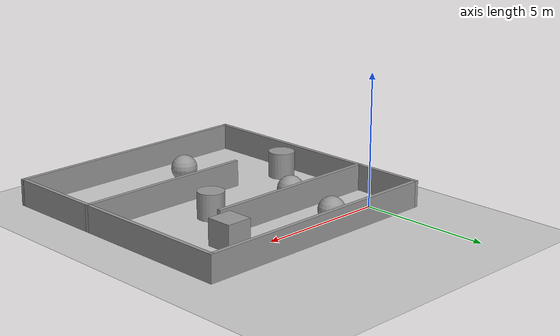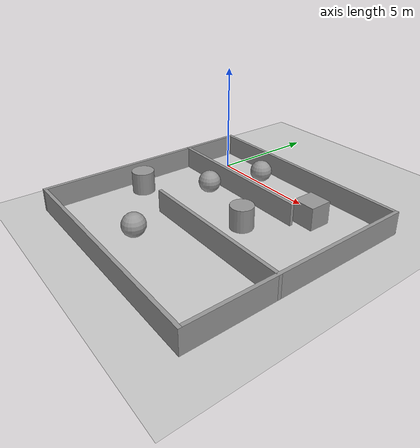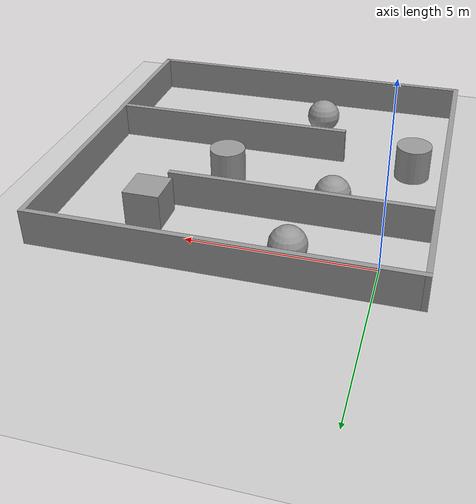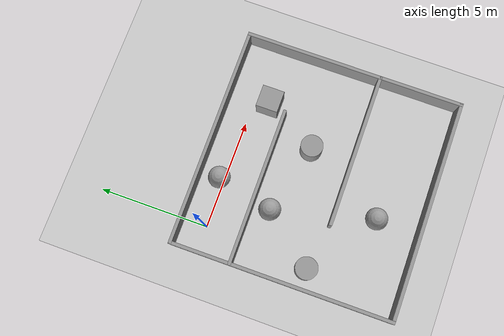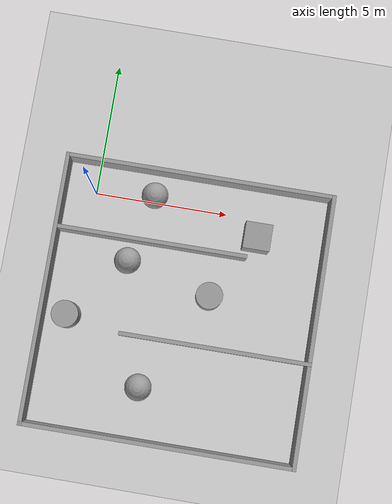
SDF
<sdf version="1.7">
 <world name="default">
  <light name="sun" type="directional">
   <pose>0 0 10 0 -0 0</pose>
   <diffuse>0.8 0.8 0.8 1</diffuse>
   <specular>0.2 0.2 0.2 1</specular>
   <attenuation>
    <range>1000</range>
    <constant>0.9</constant>
    <linear>0.01</linear>
    <quadratic>0.001</quadratic>
   </attenuation>
   <direction>-0.5 0.1 -0.9</direction>
   <spot><inner_angle>0</inner_angle><outer_angle>0</outer_angle><falloff>0</falloff></spot>
  </light>
  <model name="ground_plane">
   <static>1</static>
   <link name="link">
    <collision name="collision">
     <geometry><plane><normal>0 0 1</normal><size>100 100</size></plane></geometry>
     <surface>
      <contact><collide_bitmask>65535</collide_bitmask></contact>
      <friction><ode><mu>100</mu><mu2>50</mu2></ode></friction>
     </surface>
    </collision>
    <visual name="visual">
     <cast_shadows>0</cast_shadows>
     <geometry><plane><normal>0 0 1</normal><size>100 100</size></plane></geometry>
     <material>
      <script><uri>file://media/materials/scripts/gazebo.material</uri><name>Gazebo/Grey</name></script>
     </material>
    </visual>
   </link>
  </model>
  <gravity>0 0 -9.8</gravity>
  <magnetic_field>6e-06 2.3e-05 -4.2e-05</magnetic_field>
  <atmosphere type="adiabatic"/>
  <physics type="ode">
   <max_step_size>0.001</max_step_size>
   <real_time_factor>1</real_time_factor>
   <real_time_update_rate>1000</real_time_update_rate>
  </physics>
  <scene><ambient>0.4 0.4 0.4 1</ambient><background>0.7 0.7 0.7 1</background><shadows>1</shadows></scene>
  <spherical_coordinates>
   <surface_model>EARTH_WGS84</surface_model>
   <latitude_deg>0</latitude_deg>
   <longitude_deg>0</longitude_deg>
   <elevation>0</elevation>
   <heading_deg>0</heading_deg>
  </spherical_coordinates>
  <model name="Untitled">
   <pose>3.82083 -3.84581 0 0 0 -1.56714</pose>
   <link name="Wall_0">
    <collision name="Wall_0_Collision">
     <geometry><box><size>10.15 0.15 1</size></box></geometry>
     <pose>0 0 0.5 0 -0 0</pose>
    </collision>
    <visual name="Wall_0_Visual">
     <pose>0 0 0.5 0 -0 0</pose>
     <geometry><box><size>10.15 0.15 1</size></box></geometry>
     <material>
      <script><uri>file://media/materials/scripts/gazebo.material</uri><name>Gazebo/Grey</name></script>
      <ambient>1 1 1 1</ambient>
     </material>
     <meta><layer>0</layer></meta>
    </visual>
    <pose>-5 -0.000101 0 0 -0 1.5708</pose>
   </link>
   <link name="Wall_1">
    <collision name="Wall_1_Collision">
     <geometry><box><size>10.15 0.15 1</size></box></geometry>
     <pose>0 0 0.5 0 -0 0</pose>
    </collision>
    <visual name="Wall_1_Visual">
     <pose>0 0 0.5 0 -0 0</pose>
     <geometry><box><size>10.15 0.15 1</size></box></geometry>
     <material>
      <script><uri>file://media/materials/scripts/gazebo.material</uri><name>Gazebo/Grey</name></script>
      <ambient>1 1 1 1</ambient>
     </material>
     <meta><layer>0</layer></meta>
    </visual>
    <pose>-0 4.9999 0 0 -0 0</pose>
   </link>
   <link name="Wall_2">
    <collision name="Wall_2_Collision">
     <geometry><box><size>10.15 0.15 1</size></box></geometry>
     <pose>0 0 0.5 0 -0 0</pose>
    </collision>
    <visual name="Wall_2_Visual">
     <pose>0 0 0.5 0 -0 0</pose>
     <geometry><box><size>10.15 0.15 1</size></box></geometry>
     <material>
      <script><uri>file://media/materials/scripts/gazebo.material</uri><name>Gazebo/Grey</name></script>
      <ambient>1 1 1 1</ambient>
     </material>
     <meta><layer>0</layer></meta>
    </visual>
    <pose>5 -0.000101 0 0 -0 -1.5708</pose>
   </link>
   <link name="Wall_3">
    <collision name="Wall_3_Collision">
     <geometry><box><size>10.15 0.15 1</size></box></geometry>
     <pose>0 0 0.5 0 -0 0</pose>
    </collision>
    <visual name="Wall_3_Visual">
     <pose>0 0 0.5 0 -0 0</pose>
     <geometry><box><size>10.15 0.15 1</size></box></geometry>
     <material>
      <script><uri>file://media/materials/scripts/gazebo.material</uri><name>Gazebo/Grey</name></script>
      <ambient>1 1 1 1</ambient>
     </material>
     <meta><layer>0</layer></meta>
    </visual>
    <pose>-0 -5.0001 0 0 -0 3.14159</pose>
   </link>
   <link name="Wall_5">
    <collision name="Wall_5_Collision">
     <geometry><box><size>7.22998 0.15 1</size></box></geometry>
     <pose>0 0 0.5 0 -0 0</pose>
    </collision>
    <visual name="Wall_5_Visual">
     <pose>0 0 0.5 0 -0 0</pose>
     <geometry><box><size>7.22998 0.15 1</size></box></geometry>
     <material>
      <script><uri>file://media/materials/scripts/gazebo.material</uri><name>Gazebo/Grey</name></script>
      <ambient>1 1 1 1</ambient>
     </material>
     <meta><layer>0</layer></meta>
    </visual>
    <pose>-2.294 -1.4601 0 0 -0 1.5708</pose>
   </link>
   <link name="Wall_7">
    <collision name="Wall_7_Collision">
     <geometry><box><size>7.1084 0.15 1</size></box></geometry>
     <pose>0 0 0.5 0 -0 0</pose>
    </collision>
    <visual name="Wall_7_Visual">
     <pose>0 0 0.5 0 -0 0</pose>
     <geometry><box><size>7.1084 0.15 1</size></box></geometry>
     <material>
      <script><uri>file://media/materials/scripts/gazebo.material</uri><name>Gazebo/Grey</name></script>
      <ambient>1 1 1 1</ambient>
     </material>
     <meta><layer>0</layer></meta>
    </visual>
    <pose>1.226 1.5209 0 0 -0 -1.5708</pose>
   </link>
   <static>1</static>
  </model>
  <model name="unit_sphere">
   <pose>2.2246 0.210335 0.5 0 -0 0</pose>
   <link name="link">
    <inertial>
     <mass>1</mass>
     <inertia><ixx>0.1</ixx><ixy>0</ixy><ixz>0</ixz><iyy>0.1</iyy><iyz>0</iyz><izz>0.1</izz></inertia>
    </inertial>
    <collision name="collision"><geometry><sphere><radius>0.5</radius></sphere></geometry></collision>
    <visual name="visual">
     <geometry><sphere><radius>0.5</radius></sphere></geometry>
     <material>
      <script><name>Gazebo/Grey</name><uri>file://media/materials/scripts/gazebo.material</uri></script>
     </material>
    </visual>
   </link>
  </model>
  <model name="unit_box">
   <pose>6.24048 -0.730256 0.499995 0 1e-05 0</pose>
   <link name="link">
    <inertial>
     <mass>1</mass>
     <inertia>
      <ixx>0.166667</ixx>
      <ixy>0</ixy>
      <ixz>0</ixz>
      <iyy>0.166667</iyy>
      <iyz>0</iyz>
      <izz>0.166667</izz>
     </inertia>
    </inertial>
    <collision name="collision"><geometry><box><size>1 1 1</size></box></geometry></collision>
    <visual name="visual">
     <geometry><box><size>1 1 1</size></box></geometry>
     <material>
      <script><name>Gazebo/Grey</name><uri>file://media/materials/scripts/gazebo.material</uri></script>
     </material>
    </visual>
   </link>
  </model>
  <model name="unit_cylinder">
   <pose>4.83352 -3.18824 0.499993 -3e-06 -3e-06 0</pose>
   <link name="link">
    <inertial>
     <mass>1</mass>
     <inertia><ixx>0.145833</ixx><ixy>0</ixy><ixz>0</ixz><iyy>0.145833</iyy><iyz>0</iyz><izz>0.125</izz></inertia>
    </inertial>
    <collision name="collision">
     <geometry><cylinder><radius>0.5</radius><length>1</length></cylinder></geometry>
    </collision>
    <visual name="visual">
     <geometry><cylinder><radius>0.5</radius><length>1</length></cylinder></geometry>
     <material>
      <script><name>Gazebo/Grey</name><uri>file://media/materials/scripts/gazebo.material</uri></script>
     </material>
    </visual>
   </link>
  </model>
  <model name="unit_sphere_0">
   <pose>1.62724 -2.37295 0.5 0 -0 0</pose>
   <link name="link">
    <inertial>
     <mass>1</mass>
     <inertia><ixx>0.1</ixx><ixy>0</ixy><ixz>0</ixz><iyy>0.1</iyy><iyz>0</iyz><izz>0.1</izz></inertia>
    </inertial>
    <collision name="collision"><geometry><sphere><radius>0.5</radius></sphere></geometry></collision>
    <visual name="visual">
     <geometry><sphere><radius>0.5</radius></sphere></geometry>
     <material>
      <script><name>Gazebo/Grey</name><uri>file://media/materials/scripts/gazebo.material</uri></script>
     </material>
    </visual>
   </link>
  </model>
  <model name="unit_cylinder_0">
   <pose>-0.265431 -4.71279 0.499993 -3e-06 -4e-06 -0</pose>
   <link name="link">
    <inertial>
     <mass>1</mass>
     <inertia><ixx>0.145833</ixx><ixy>0</ixy><ixz>0</ixz><iyy>0.145833</iyy><iyz>0</iyz><izz>0.125</izz></inertia>
    </inertial>
    <collision name="collision">
     <geometry><cylinder><radius>0.5</radius><length>1</length></cylinder></geometry>
    </collision>
    <visual name="visual">
     <geometry><cylinder><radius>0.5</radius><length>1</length></cylinder></geometry>
     <material>
      <script><name>Gazebo/Grey</name><uri>file://media/materials/scripts/gazebo.material</uri></script>
     </material>
    </visual>
   </link>
  </model>
  <model name="unit_sphere_1">
   <pose>2.81127 -6.91266 0.5 0 -0 0</pose>
   <link name="link">
    <inertial>
     <mass>1</mass>
     <inertia><ixx>0.1</ixx><ixy>0</ixy><ixz>0</ixz><iyy>0.1</iyy><iyz>0</iyz><izz>0.1</izz></inertia>
    </inertial>
    <collision name="collision"><geometry><sphere><radius>0.5</radius></sphere></geometry></collision>
    <visual name="visual">
     <geometry><sphere><radius>0.5</radius></sphere></geometry>
     <material>
      <script><name>Gazebo/Grey</name><uri>file://media/materials/scripts/gazebo.material</uri></script>
     </material>
    </visual>
   </link>
  </model>
 </world>
</sdf>
